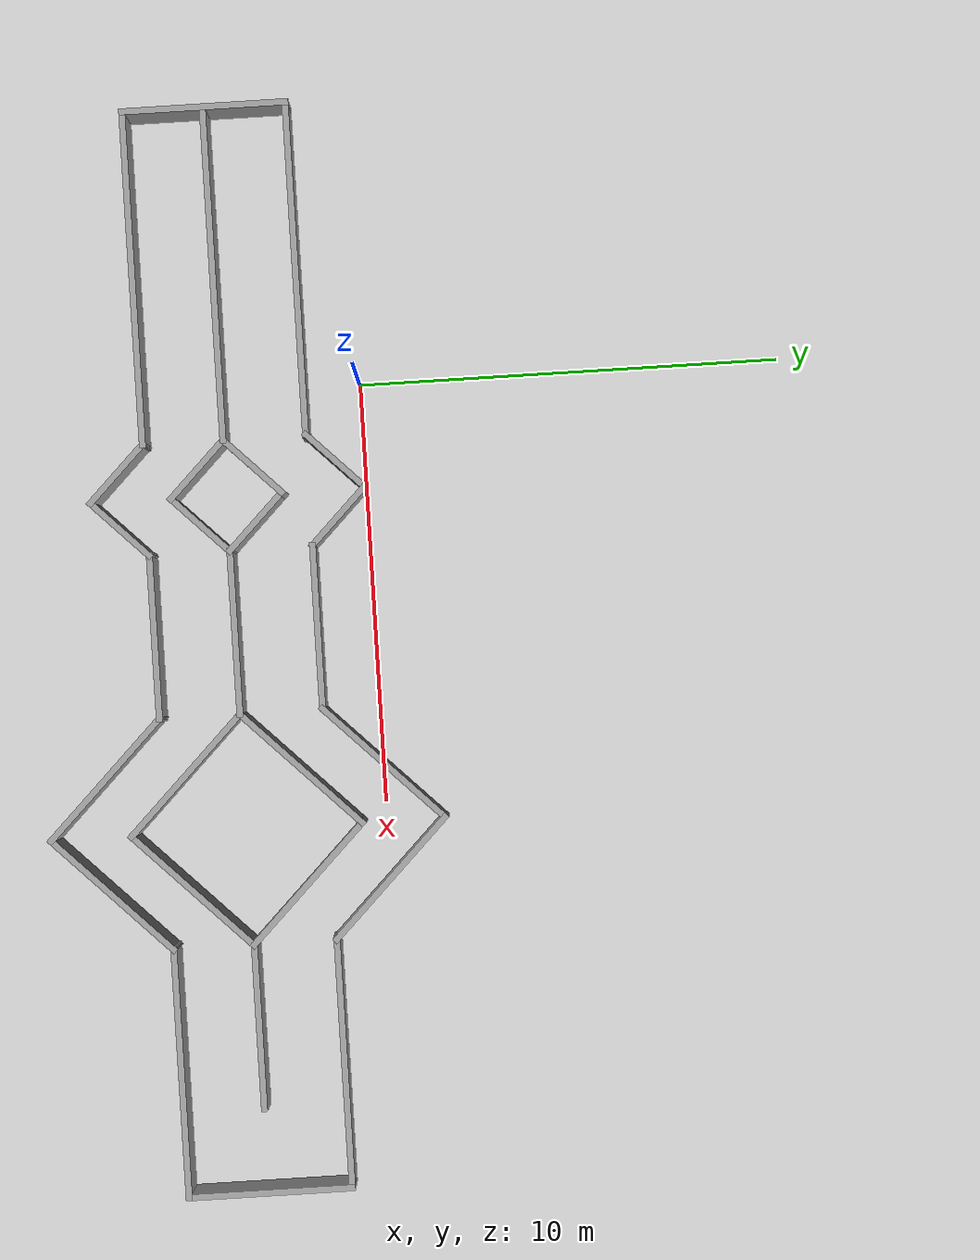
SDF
<sdf version="1.6">
 <world name="default">
  <light name="sun" type="directional">
   <pose>0 0 10 0 -0 0</pose>
   <diffuse>0.8 0.8 0.8 1</diffuse>
   <specular>0.1 0.1 0.1 1</specular>
   <attenuation>
    <range>1000</range>
    <constant>0.9</constant>
    <linear>0.01</linear>
    <quadratic>0.001</quadratic>
   </attenuation>
   <direction>-0.5 0.5 -1</direction>
  </light>
  <model name="ground_plane">
   <static>1</static>
   <link name="link">
    <collision name="collision">
     <geometry><plane><normal>0 0 1</normal><size>100 100</size></plane></geometry>
     <surface><friction><ode><mu>100</mu><mu2>50</mu2></ode></friction></surface>
    </collision>
    <visual name="visual">
     <cast_shadows>0</cast_shadows>
     <geometry><plane><normal>0 0 1</normal><size>100 100</size></plane></geometry>
     <material>
      <script><uri>file://media/materials/scripts/gazebo.material</uri><name>Gazebo/Grey</name></script>
     </material>
    </visual>
   </link>
  </model>
  <gravity>0 0 -9.8</gravity>
  <magnetic_field>6e-06 2.3e-05 -4.2e-05</magnetic_field>
  <atmosphere type="adiabatic"/>
  <physics name="default_physics" default="0" type="ode">
   <max_step_size>0.001</max_step_size>
   <real_time_factor>1</real_time_factor>
   <real_time_update_rate>1000</real_time_update_rate>
  </physics>
  <scene><ambient>0.4 0.4 0.4 1</ambient><background>0.7 0.7 0.7 1</background><shadows>1</shadows></scene>
  <spherical_coordinates>
   <surface_model>EARTH_WGS84</surface_model>
   <latitude_deg>0</latitude_deg>
   <longitude_deg>0</longitude_deg>
   <elevation>0</elevation>
   <heading_deg>0</heading_deg>
  </spherical_coordinates>
  <model name="runway">
   <pose>6.15663 -3.25375 0 0 -0 0</pose>
   <link name="Wall_0">
    <collision name="Wall_0_Collision">
     <geometry><box><size>4 0.15 2.5</size></box></geometry>
     <pose>0 0 1.25 0 -0 0</pose>
    </collision>
    <visual name="Wall_0_Visual">
     <pose>0 0 1.25 0 -0 0</pose>
     <geometry><box><size>4 0.15 2.5</size></box></geometry>
     <material>
      <script><uri>file://media/materials/scripts/gazebo.material</uri><name>Gazebo/Grey</name></script>
      <ambient>1 1 1 1</ambient>
     </material>
    </visual>
    <pose>-12.8055 0 0 0 0 -1.5708</pose>
   </link>
   <link name="Wall_1">
    <collision name="Wall_1_Collision">
     <geometry><box><size>8 0.15 2.5</size></box></geometry>
     <pose>0 0 1.25 0 -0 0</pose>
    </collision>
    <visual name="Wall_1_Visual">
     <pose>0 0 1.25 0 -0 0</pose>
     <geometry><box><size>8 0.15 2.5</size></box></geometry>
     <material>
      <script><uri>file://media/materials/scripts/gazebo.material</uri><name>Gazebo/Grey</name></script>
      <ambient>1 1 1 1</ambient>
     </material>
    </visual>
    <pose>-8.88051 -1.925 0 0 -0 0</pose>
   </link>
   <link name="Wall_10">
    <collision name="Wall_10_Collision">
     <geometry><box><size>4 0.15 2.5</size></box></geometry>
     <pose>0 0 1.25 0 -0 0</pose>
    </collision>
    <visual name="Wall_10_Visual">
     <pose>0 0 1.25 0 -0 0</pose>
     <geometry><box><size>4 0.15 2.5</size></box></geometry>
     <material>
      <script><uri>file://media/materials/scripts/gazebo.material</uri><name>Gazebo/Grey</name></script>
      <ambient>1 1 1 1</ambient>
     </material>
    </visual>
    <pose>5.59433 3.28618 0 0 -0 2.35619</pose>
   </link>
   <link name="Wall_11">
    <collision name="Wall_11_Collision">
     <geometry><box><size>4 0.15 2.5</size></box></geometry>
     <pose>0 0 1.25 0 -0 0</pose>
    </collision>
    <visual name="Wall_11_Visual">
     <pose>0 0 1.25 0 -0 0</pose>
     <geometry><box><size>4 0.15 2.5</size></box></geometry>
     <material>
      <script><uri>file://media/materials/scripts/gazebo.material</uri><name>Gazebo/Grey</name></script>
      <ambient>1 1 1 1</ambient>
     </material>
    </visual>
    <pose>2.87197 3.28618 0 0 0 -2.35619</pose>
   </link>
   <link name="Wall_12">
    <collision name="Wall_12_Collision">
     <geometry><box><size>4 0.15 2.5</size></box></geometry>
     <pose>0 0 1.25 0 -0 0</pose>
    </collision>
    <visual name="Wall_12_Visual">
     <pose>0 0 1.25 0 -0 0</pose>
     <geometry><box><size>4 0.15 2.5</size></box></geometry>
     <material>
      <script><uri>file://media/materials/scripts/gazebo.material</uri><name>Gazebo/Grey</name></script>
      <ambient>1 1 1 1</ambient>
     </material>
    </visual>
    <pose>-0.414214 1.925 0 0 -0 3.14159</pose>
   </link>
   <link name="Wall_13">
    <collision name="Wall_13_Collision">
     <geometry><box><size>2 0.15 2.5</size></box></geometry>
     <pose>0 0 1.25 0 -0 0</pose>
    </collision>
    <visual name="Wall_13_Visual">
     <pose>0 0 1.25 0 -0 0</pose>
     <geometry><box><size>2 0.15 2.5</size></box></geometry>
     <material>
      <script><uri>file://media/materials/scripts/gazebo.material</uri><name>Gazebo/Grey</name></script>
      <ambient>1 1 1 1</ambient>
     </material>
    </visual>
    <pose>-2.99329 2.57907 0 0 -0 2.35619</pose>
   </link>
   <link name="Wall_14">
    <collision name="Wall_14_Collision">
     <geometry><box><size>2 0.15 2.5</size></box></geometry>
     <pose>0 0 1.25 0 -0 0</pose>
    </collision>
    <visual name="Wall_14_Visual">
     <pose>0 0 1.25 0 -0 0</pose>
     <geometry><box><size>2 0.15 2.5</size></box></geometry>
     <material>
      <script><uri>file://media/materials/scripts/gazebo.material</uri><name>Gazebo/Grey</name></script>
      <ambient>1 1 1 1</ambient>
     </material>
    </visual>
    <pose>-4.30143 2.57907 0 0 0 -2.35619</pose>
   </link>
   <link name="Wall_15">
    <collision name="Wall_15_Collision">
     <geometry><box><size>8 0.15 2.5</size></box></geometry>
     <pose>0 0 1.25 0 -0 0</pose>
    </collision>
    <visual name="Wall_15_Visual">
     <pose>0 0 1.25 0 -0 0</pose>
     <geometry><box><size>8 0.15 2.5</size></box></geometry>
     <material>
      <script><uri>file://media/materials/scripts/gazebo.material</uri><name>Gazebo/Grey</name></script>
      <ambient>1 1 1 1</ambient>
     </material>
    </visual>
    <pose>-8.88051 1.925 0 0 0 -3.14159</pose>
   </link>
   <link name="Wall_17">
    <collision name="Wall_17_Collision">
     <geometry><box><size>8 0.15 2.5</size></box></geometry>
     <pose>0 0 1.25 0 -0 0</pose>
    </collision>
    <visual name="Wall_17_Visual">
     <pose>0 0 1.25 0 -0 0</pose>
     <geometry><box><size>8 0.15 2.5</size></box></geometry>
     <material>
      <script><uri>file://media/materials/scripts/gazebo.material</uri><name>Gazebo/Grey</name></script>
      <ambient>1 1 1 1</ambient>
     </material>
    </visual>
    <pose>-8.86795 -0.02577 0 0 -0 0</pose>
   </link>
   <link name="Wall_18">
    <collision name="Wall_18_Collision">
     <geometry><box><size>2 0.15 2.5</size></box></geometry>
     <pose>0 0 1.25 0 -0 0</pose>
    </collision>
    <visual name="Wall_18_Visual">
     <pose>0 0 1.25 0 -0 0</pose>
     <geometry><box><size>2 0.15 2.5</size></box></geometry>
     <material>
      <script><uri>file://media/materials/scripts/gazebo.material</uri><name>Gazebo/Grey</name></script>
      <ambient>1 1 1 1</ambient>
     </material>
    </visual>
    <pose>-4.28887 0.628303 0 0 -0 0.785398</pose>
   </link>
   <link name="Wall_19">
    <collision name="Wall_19_Collision">
     <geometry><box><size>2 0.15 2.5</size></box></geometry>
     <pose>0 0 1.25 0 -0 0</pose>
    </collision>
    <visual name="Wall_19_Visual">
     <pose>0 0 1.25 0 -0 0</pose>
     <geometry><box><size>2 0.15 2.5</size></box></geometry>
     <material>
      <script><uri>file://media/materials/scripts/gazebo.material</uri><name>Gazebo/Grey</name></script>
      <ambient>1 1 1 1</ambient>
     </material>
    </visual>
    <pose>-2.98073 0.628303 0 0 0 -0.785398</pose>
   </link>
   <link name="Wall_2">
    <collision name="Wall_2_Collision">
     <geometry><box><size>2 0.15 2.5</size></box></geometry>
     <pose>0 0 1.25 0 -0 0</pose>
    </collision>
    <visual name="Wall_2_Visual">
     <pose>0 0 1.25 0 -0 0</pose>
     <geometry><box><size>2 0.15 2.5</size></box></geometry>
     <material>
      <script><uri>file://media/materials/scripts/gazebo.material</uri><name>Gazebo/Grey</name></script>
      <ambient>1 1 1 1</ambient>
     </material>
    </visual>
    <pose>-4.30143 -2.57907 0 0 0 -0.785398</pose>
   </link>
   <link name="Wall_20">
    <collision name="Wall_20_Collision">
     <geometry><box><size>4 0.15 2.5</size></box></geometry>
     <pose>0 0 1.25 0 -0 0</pose>
    </collision>
    <visual name="Wall_20_Visual">
     <pose>0 0 1.25 0 -0 0</pose>
     <geometry><box><size>4 0.15 2.5</size></box></geometry>
     <material>
      <script><uri>file://media/materials/scripts/gazebo.material</uri><name>Gazebo/Grey</name></script>
      <ambient>1 1 1 1</ambient>
     </material>
    </visual>
    <pose>-0.401653 -0.02577 0 0 -0 0</pose>
   </link>
   <link name="Wall_21">
    <collision name="Wall_21_Collision">
     <geometry><box><size>4 0.15 2.5</size></box></geometry>
     <pose>0 0 1.25 0 -0 0</pose>
    </collision>
    <visual name="Wall_21_Visual">
     <pose>0 0 1.25 0 -0 0</pose>
     <geometry><box><size>4 0.15 2.5</size></box></geometry>
     <material>
      <script><uri>file://media/materials/scripts/gazebo.material</uri><name>Gazebo/Grey</name></script>
      <ambient>1 1 1 1</ambient>
     </material>
    </visual>
    <pose>2.88453 1.33541 0 0 -0 0.785398</pose>
   </link>
   <link name="Wall_22">
    <collision name="Wall_22_Collision">
     <geometry><box><size>4 0.15 2.5</size></box></geometry>
     <pose>0 0 1.25 0 -0 0</pose>
    </collision>
    <visual name="Wall_22_Visual">
     <pose>0 0 1.25 0 -0 0</pose>
     <geometry><box><size>4 0.15 2.5</size></box></geometry>
     <material>
      <script><uri>file://media/materials/scripts/gazebo.material</uri><name>Gazebo/Grey</name></script>
      <ambient>1 1 1 1</ambient>
     </material>
    </visual>
    <pose>5.60689 1.33541 0 0 0 -0.785398</pose>
   </link>
   <link name="Wall_23">
    <collision name="Wall_23_Collision">
     <geometry><box><size>4 0.15 2.5</size></box></geometry>
     <pose>0 0 1.25 0 -0 0</pose>
    </collision>
    <visual name="Wall_23_Visual">
     <pose>0 0 1.25 0 -0 0</pose>
     <geometry><box><size>4 0.15 2.5</size></box></geometry>
     <material>
      <script><uri>file://media/materials/scripts/gazebo.material</uri><name>Gazebo/Grey</name></script>
      <ambient>1 1 1 1</ambient>
     </material>
    </visual>
    <pose>8.89307 -0.02577 0 0 -0 0</pose>
   </link>
   <link name="Wall_25">
    <collision name="Wall_25_Collision">
     <geometry><box><size>2 0.15 2.5</size></box></geometry>
     <pose>0 0 1.25 0 -0 0</pose>
    </collision>
    <visual name="Wall_25_Visual">
     <pose>0 0 1.25 0 -0 0</pose>
     <geometry><box><size>2 0.15 2.5</size></box></geometry>
     <material>
      <script><uri>file://media/materials/scripts/gazebo.material</uri><name>Gazebo/Grey</name></script>
      <ambient>1 1 1 1</ambient>
     </material>
    </visual>
    <pose>-4.28887 -0.679844 0 0 0 -0.785398</pose>
   </link>
   <link name="Wall_26">
    <collision name="Wall_26_Collision">
     <geometry><box><size>2 0.15 2.5</size></box></geometry>
     <pose>0 0 1.25 0 -0 0</pose>
    </collision>
    <visual name="Wall_26_Visual">
     <pose>0 0 1.25 0 -0 0</pose>
     <geometry><box><size>2 0.15 2.5</size></box></geometry>
     <material>
      <script><uri>file://media/materials/scripts/gazebo.material</uri><name>Gazebo/Grey</name></script>
      <ambient>1 1 1 1</ambient>
     </material>
    </visual>
    <pose>-2.98073 -0.679844 0 0 -0 0.785398</pose>
   </link>
   <link name="Wall_28">
    <collision name="Wall_28_Collision">
     <geometry><box><size>4 0.15 2.5</size></box></geometry>
     <pose>0 0 1.25 0 -0 0</pose>
    </collision>
    <visual name="Wall_28_Visual">
     <pose>0 0 1.25 0 -0 0</pose>
     <geometry><box><size>4 0.15 2.5</size></box></geometry>
     <material>
      <script><uri>file://media/materials/scripts/gazebo.material</uri><name>Gazebo/Grey</name></script>
      <ambient>1 1 1 1</ambient>
     </material>
    </visual>
    <pose>2.88453 -1.38695 0 0 0 -0.785398</pose>
   </link>
   <link name="Wall_29">
    <collision name="Wall_29_Collision">
     <geometry><box><size>4 0.15 2.5</size></box></geometry>
     <pose>0 0 1.25 0 -0 0</pose>
    </collision>
    <visual name="Wall_29_Visual">
     <pose>0 0 1.25 0 -0 0</pose>
     <geometry><box><size>4 0.15 2.5</size></box></geometry>
     <material>
      <script><uri>file://media/materials/scripts/gazebo.material</uri><name>Gazebo/Grey</name></script>
      <ambient>1 1 1 1</ambient>
     </material>
    </visual>
    <pose>5.60689 -1.38695 0 0 -0 0.785398</pose>
   </link>
   <link name="Wall_3">
    <collision name="Wall_3_Collision">
     <geometry><box><size>2 0.15 2.5</size></box></geometry>
     <pose>0 0 1.25 0 -0 0</pose>
    </collision>
    <visual name="Wall_3_Visual">
     <pose>0 0 1.25 0 -0 0</pose>
     <geometry><box><size>2 0.15 2.5</size></box></geometry>
     <material>
      <script><uri>file://media/materials/scripts/gazebo.material</uri><name>Gazebo/Grey</name></script>
      <ambient>1 1 1 1</ambient>
     </material>
    </visual>
    <pose>-2.99329 -2.57907 0 0 -0 0.785398</pose>
   </link>
   <link name="Wall_4">
    <collision name="Wall_4_Collision">
     <geometry><box><size>4 0.15 2.5</size></box></geometry>
     <pose>0 0 1.25 0 -0 0</pose>
    </collision>
    <visual name="Wall_4_Visual">
     <pose>0 0 1.25 0 -0 0</pose>
     <geometry><box><size>4 0.15 2.5</size></box></geometry>
     <material>
      <script><uri>file://media/materials/scripts/gazebo.material</uri><name>Gazebo/Grey</name></script>
      <ambient>1 1 1 1</ambient>
     </material>
    </visual>
    <pose>-0.414214 -1.925 0 0 -0 0</pose>
   </link>
   <link name="Wall_5">
    <collision name="Wall_5_Collision">
     <geometry><box><size>4 0.15 2.5</size></box></geometry>
     <pose>0 0 1.25 0 -0 0</pose>
    </collision>
    <visual name="Wall_5_Visual">
     <pose>0 0 1.25 0 -0 0</pose>
     <geometry><box><size>4 0.15 2.5</size></box></geometry>
     <material>
      <script><uri>file://media/materials/scripts/gazebo.material</uri><name>Gazebo/Grey</name></script>
      <ambient>1 1 1 1</ambient>
     </material>
    </visual>
    <pose>2.87197 -3.28618 0 0 0 -0.785398</pose>
   </link>
   <link name="Wall_6">
    <collision name="Wall_6_Collision">
     <geometry><box><size>4 0.15 2.5</size></box></geometry>
     <pose>0 0 1.25 0 -0 0</pose>
    </collision>
    <visual name="Wall_6_Visual">
     <pose>0 0 1.25 0 -0 0</pose>
     <geometry><box><size>4 0.15 2.5</size></box></geometry>
     <material>
      <script><uri>file://media/materials/scripts/gazebo.material</uri><name>Gazebo/Grey</name></script>
      <ambient>1 1 1 1</ambient>
     </material>
    </visual>
    <pose>5.59433 -3.28618 0 0 -0 0.785398</pose>
   </link>
   <link name="Wall_7">
    <collision name="Wall_7_Collision">
     <geometry><box><size>6 0.15 2.5</size></box></geometry>
     <pose>0 0 1.25 0 -0 0</pose>
    </collision>
    <visual name="Wall_7_Visual">
     <pose>0 0 1.25 0 -0 0</pose>
     <geometry><box><size>6 0.15 2.5</size></box></geometry>
     <material>
      <script><uri>file://media/materials/scripts/gazebo.material</uri><name>Gazebo/Grey</name></script>
      <ambient>1 1 1 1</ambient>
     </material>
    </visual>
    <pose>9.88051 -1.925 0 0 -0 0</pose>
   </link>
   <link name="Wall_8">
    <collision name="Wall_8_Collision">
     <geometry><box><size>4 0.15 2.5</size></box></geometry>
     <pose>0 0 1.25 0 -0 0</pose>
    </collision>
    <visual name="Wall_8_Visual">
     <pose>0 0 1.25 0 -0 0</pose>
     <geometry><box><size>4 0.15 2.5</size></box></geometry>
     <material>
      <script><uri>file://media/materials/scripts/gazebo.material</uri><name>Gazebo/Grey</name></script>
      <ambient>1 1 1 1</ambient>
     </material>
    </visual>
    <pose>12.8055 0 0 0 -0 1.5708</pose>
   </link>
   <link name="Wall_9">
    <collision name="Wall_9_Collision">
     <geometry><box><size>6 0.15 2.5</size></box></geometry>
     <pose>0 0 1.25 0 -0 0</pose>
    </collision>
    <visual name="Wall_9_Visual">
     <pose>0 0 1.25 0 -0 0</pose>
     <geometry><box><size>6 0.15 2.5</size></box></geometry>
     <material>
      <script><uri>file://media/materials/scripts/gazebo.material</uri><name>Gazebo/Grey</name></script>
      <ambient>1 1 1 1</ambient>
     </material>
    </visual>
    <pose>9.88051 1.925 0 0 -0 3.14159</pose>
   </link>
   <static>1</static>
  </model>
  <audio><device>default</device></audio>
 </world>
</sdf>
